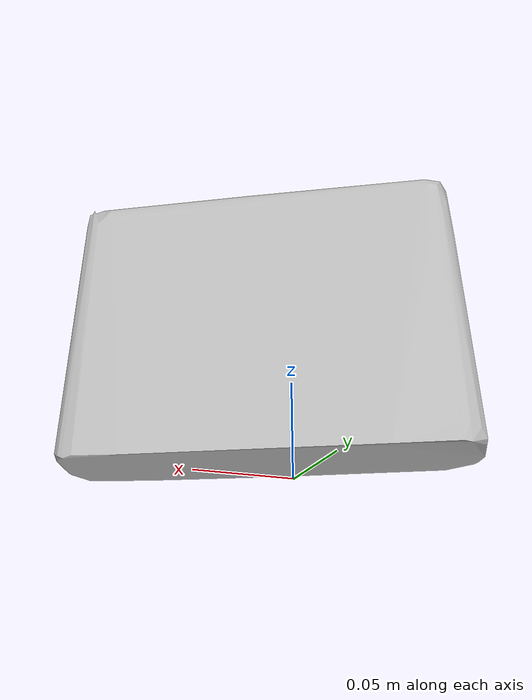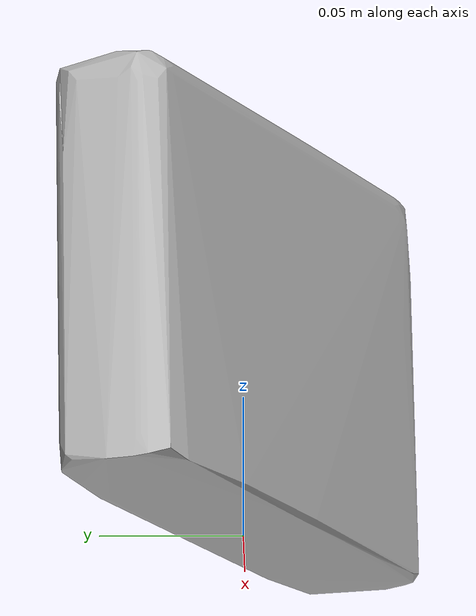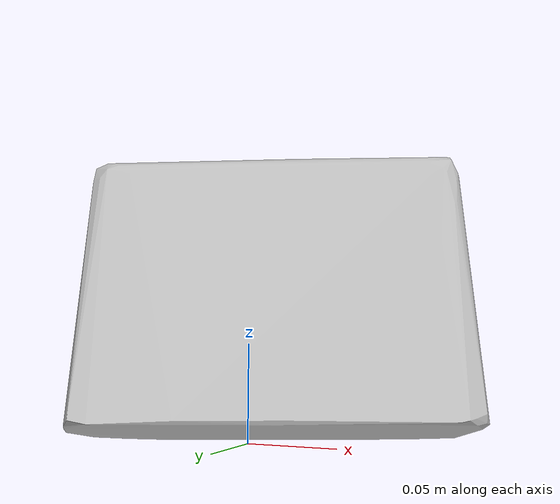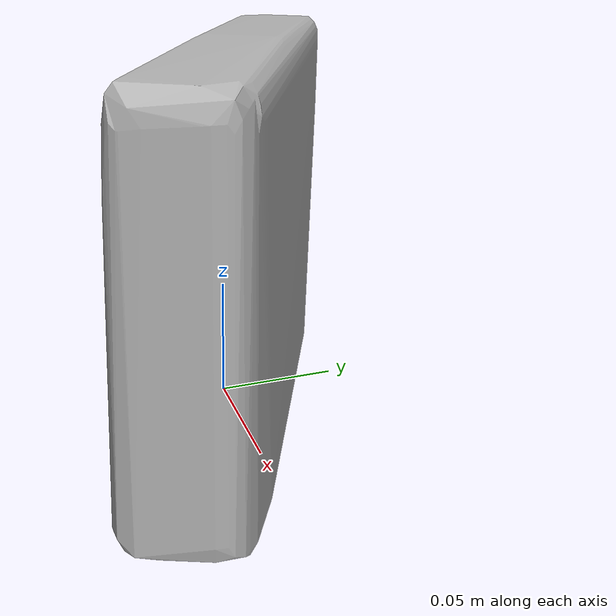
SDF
<?xml version='1.0'?>
<sdf version="1.4">
  <model name="eating_right_for_healthy_living_mixed_berry">
    <static>false</static>
    <link name="link">
      <inertial>
        <pose>0.014689499672605475 0.0017187314666304023 0.07619202508667222 -1.581616860606161 0.014191252115451582 1.085361166851668</pose>
        <mass>0.13961805966367247</mass>
        <inertia>
          <ixx>0.0007131639294253742</ixx>
          <ixy>-1.0415412054688513e-21</ixy>
          <ixz>-7.723404173447949e-20</ixz>
          <iyy>0.0004910242239902097</iyy>
          <iyz>4.559369986579614e-22</iyz>
          <izz>0.000273852185055205</izz>
        </inertia>
      </inertial>
      <collision name="collision">
        <geometry>
          <mesh>
            <!-- Use a downsampled mesh for collisions -->
            <uri>model:///eating_right_for_healthy_living_mixed_berry/eating_right_for_healthy_living_mixed_berry_250_collision.obj</uri>
	        </mesh>
        </geometry>
        <surface>
      </surface>
      </collision>
      <visual name="visual">
        <geometry>
          <mesh>
            <uri>model:///eating_right_for_healthy_living_mixed_berry/optimized_tsdf_texture_mapped_mesh.obj</uri>
	        </mesh>
        </geometry>
        <material>
          <script>
            <uri>model:///eating_right_for_healthy_living_mixed_berry/eating_right_for_healthy_living_mixed_berry.material</uri>
            <name>eating_right_for_healthy_living_mixed_berry</name>
          </script>
        </material>
      </visual>
    </link>
  </model>
</sdf>
